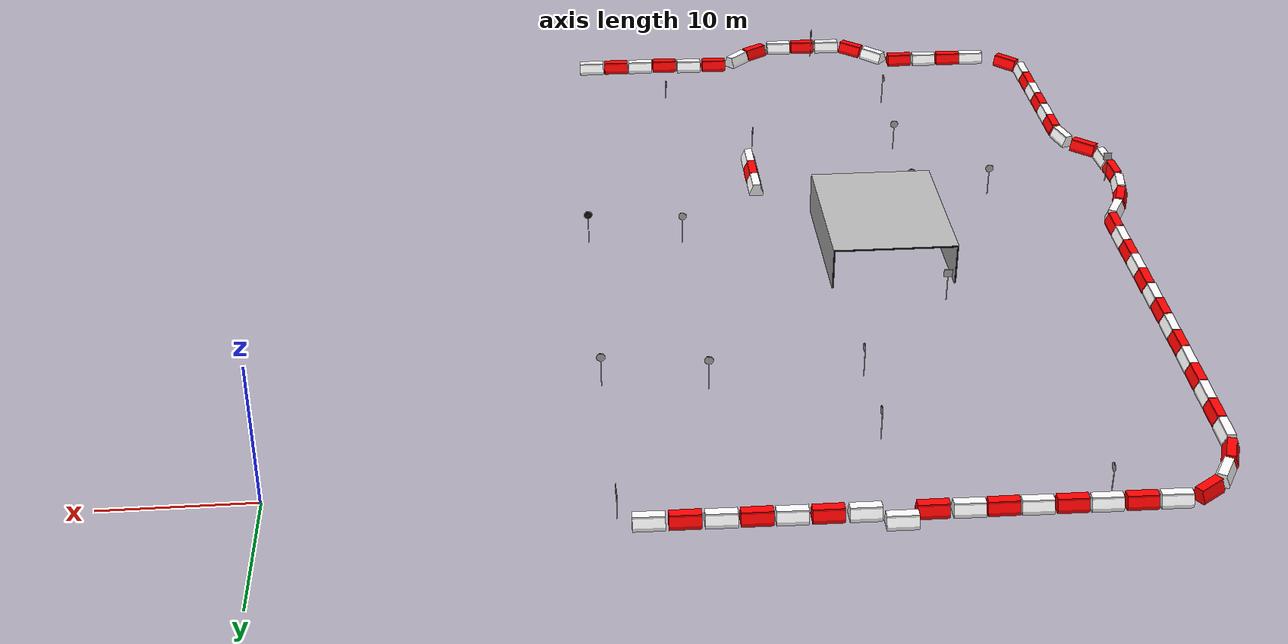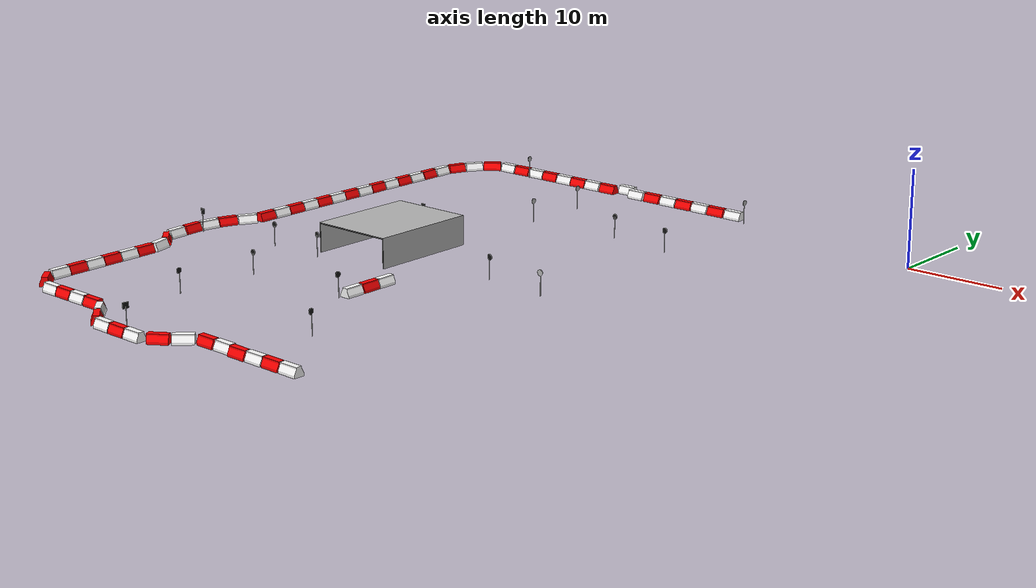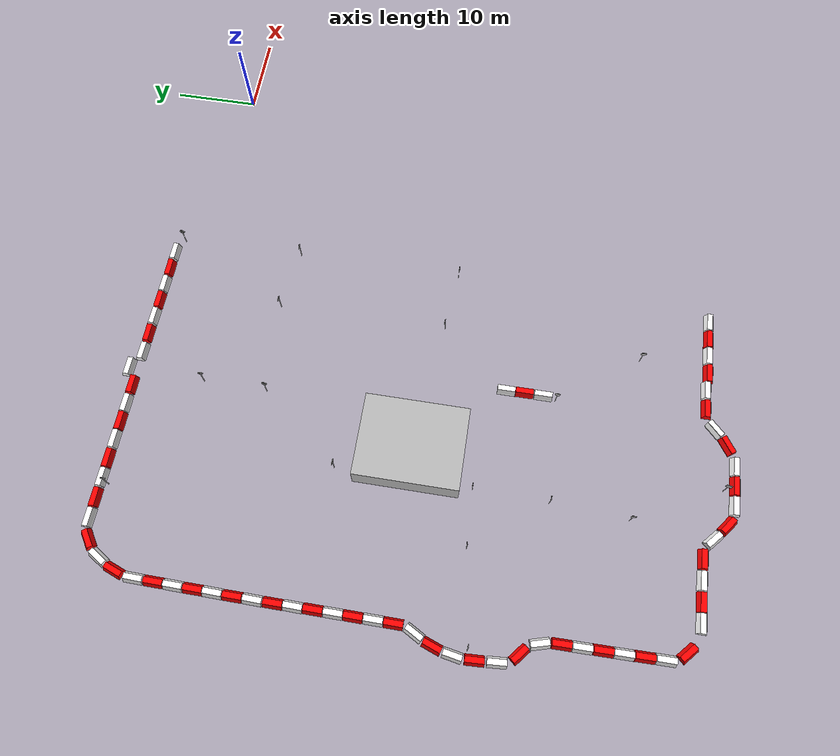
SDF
<sdf version="1.10">
 <world name="default">
  <include>
   <uri>package://simulation_2025/models/durak_levha</uri>
   <name>DurakLevha</name>
   <pose>-62.439900000000002 -36.8536 0 0 0 1.49912</pose>
  </include>
  <include>
   <uri>package://simulation_2025/models/durak_levha</uri>
   <name>DurakLevha_0</name>
   <pose>-42.521700000000003 -61.871200000000002 0 0 0 2.9287899999999998</pose>
  </include>
  <include>
   <uri>package://simulation_2025/models/donel_kavsak_levha</uri>
   <name>DonelKavsak_0</name>
   <pose>-35.172699999999999 -43.2316 0 0 0 3.0950199999999999</pose>
  </include>
  <include>
   <uri>package://simulation_2025/models/donel_kavsak_levha</uri>
   <name>DonelKavsak_1</name>
   <pose>-28.377600000000001 -29.726700000000001 0 0 0 1.4368899999999998</pose>
  </include>
  <include>
   <uri>package://simulation_2025/models/beyaz_bariyer</uri>
   <name>BeyazBariyer_1_1_1_1_1</name>
   <pose>-23.4968 3.5769899999999999 0 0 0 -1.5805400000000001</pose>
  </include>
  <include>
   <uri>package://simulation_2025/models/kirmizi_bariyer</uri>
   <name>KirmiziBariyer_1_1_1_1_1_1</name>
   <pose>-25.707899999999999 3.5786199999999999 0 0 0 -1.5717000000000001</pose>
  </include>
  <include>
   <uri>package://simulation_2025/models/beyaz_bariyer</uri>
   <name>BeyazBariyer_1_1_1_1_1_1</name>
   <pose>-27.892499999999998 3.6085400000000001 0 0 0 -1.5805400000000001</pose>
  </include>
  <include>
   <uri>package://simulation_2025/models/kirmizi_bariyer</uri>
   <name>KirmiziBariyer_1_1_1_1_1_1_1</name>
   <pose>-30.050699999999999 3.6092499999999998 0 0 0 -1.5717000000000001</pose>
  </include>
  <include>
   <uri>package://simulation_2025/models/beyaz_bariyer</uri>
   <name>BeyazBariyer_1_1_1_1_1_1_1</name>
   <pose>-32.192500000000003 3.6444399999999999 0 0 0 -1.5805400000000001</pose>
  </include>
  <include>
   <uri>package://simulation_2025/models/kirmizi_bariyer</uri>
   <name>KirmiziBariyer_1_1_1_1_1_1_1_1</name>
   <pose>-34.387799999999999 3.6457099999999998 0 0 0 -1.5717000000000001</pose>
  </include>
  <include>
   <uri>package://simulation_2025/models/beyaz_bariyer</uri>
   <name>BeyazBariyer_1_1_1_1_1_1_1_1</name>
   <pose>-36.660600000000002 3.6548500000000002 0 0 0 -1.5805400000000001</pose>
  </include>
  <include>
   <uri>package://simulation_2025/models/kirmizi_bariyer</uri>
   <name>KirmiziBariyer_1_1_1_1_1_1_1_1_1</name>
   <pose>-40.786499999999997 3.68798 0 0 0 -1.5717000000000001</pose>
  </include>
  <include>
   <uri>package://simulation_2025/models/beyaz_bariyer</uri>
   <name>BeyazBariyer_1_1_1_1_1_1_1_1_1</name>
   <pose>-43.002699999999997 3.72438 0 0 0 -1.5805400000000001</pose>
  </include>
  <include>
   <uri>package://simulation_2025/models/beyaz_bariyer</uri>
   <name>BeyazBariyer_1_1_1_1_1_1_1_1_2</name>
   <pose>-38.743699999999997 4.6217600000000001 0 0 0 -1.5805400000000001</pose>
  </include>
  <include>
   <uri>package://simulation_2025/models/kirmizi_bariyer</uri>
   <name>KirmiziBariyer_1_1_1_1_1_1_1_1_1_1</name>
   <pose>-45.109400000000001 3.7113200000000002 0 0 0 -1.5717000000000001</pose>
  </include>
  <include>
   <uri>package://simulation_2025/models/beyaz_bariyer</uri>
   <name>BeyazBariyer_1_1_1_1_1_1_1_1_1_1</name>
   <pose>-47.203099999999999 3.7475800000000001 0 0 0 -1.5805400000000001</pose>
  </include>
  <include>
   <uri>package://simulation_2025/models/kirmizi_bariyer</uri>
   <name>KirmiziBariyer_1_1_1_1_1_1_1_1_1_1_1</name>
   <pose>-49.362200000000001 3.74892 0 0 0 -1.5717000000000001</pose>
  </include>
  <include>
   <uri>package://simulation_2025/models/beyaz_bariyer</uri>
   <name>BeyazBariyer_1_1_1_1_1_1_1_1_1_1_1</name>
   <pose>-51.485199999999999 3.77935 0 0 0 -1.5805400000000001</pose>
  </include>
  <include>
   <uri>package://simulation_2025/models/kirmizi_bariyer</uri>
   <name>KirmiziBariyer_1_1_1_1_1_1_1_1_1_1_1_1</name>
   <pose>-53.670900000000003 3.77759 0 0 0 -1.5717000000000001</pose>
  </include>
  <include>
   <uri>package://simulation_2025/models/kirmizi_bariyer</uri>
   <name>KirmiziBariyer_1_1_1_1_1_1_1_1_1_1_1_2</name>
   <pose>-54.361400000000003 -60.233800000000002 0 0 0 -1.5717000000000001</pose>
  </include>
  <include>
   <uri>package://simulation_2025/models/beyaz_bariyer</uri>
   <name>BeyazBariyer_1_1_1_1_1_1_1_1_1_2</name>
   <pose>-52.241500000000002 -60.240499999999997 0 0 0 -1.5805400000000001</pose>
  </include>
  <include>
   <uri>package://simulation_2025/models/kirmizi_bariyer</uri>
   <name>KirmiziBariyer_1_1_1_1_1_1_1_1_1_1_1_2_1</name>
   <pose>-50.063099999999999 -60.280200000000001 0 0 0 -1.5717000000000001</pose>
  </include>
  <include>
   <uri>package://simulation_2025/models/beyaz_bariyer</uri>
   <name>BeyazBariyer_1_1_1_1_1_1_1_1_1_2_1</name>
   <pose>-48.206000000000003 -61.148000000000003 0 0 0 -2.3258899999999998</pose>
  </include>
  <include>
   <uri>package://simulation_2025/models/kirmizi_bariyer</uri>
   <name>KirmiziBariyer_1_1_1_1_1_1_1_1_1_1_1_2_1_1</name>
   <pose>-46.489899999999999 -62.652099999999997 0 0 0 -2.2500100000000001</pose>
  </include>
  <include>
   <uri>package://simulation_2025/models/beyaz_bariyer</uri>
   <name>BeyazBariyer_1_1_1_1_1_1_1_1_1_2_2</name>
   <pose>-44.0349 -63.509 0 0 0 -1.5805400000000001</pose>
  </include>
  <include>
   <uri>package://simulation_2025/models/kirmizi_bariyer</uri>
   <name>KirmiziBariyer_1_1_1_1_1_1_1_1_1_1_1_2_1_2</name>
   <pose>-41.883899999999997 -63.557299999999998 0 0 0 -1.5717000000000001</pose>
  </include>
  <include>
   <uri>package://simulation_2025/models/beyaz_bariyer</uri>
   <name>BeyazBariyer_1_1_1_1_1_1_1_1_1_2_2_1</name>
   <pose>-39.757399999999997 -63.548299999999998 0 0 0 -1.5805400000000001</pose>
  </include>
  <include>
   <uri>package://simulation_2025/models/kirmizi_bariyer</uri>
   <name>KirmiziBariyer_1_1_1_1_1_1_1_1_1_1_1_2_1_1_1</name>
   <pose>-37.686100000000003 -61.932400000000001 0 0 0 2.13992</pose>
  </include>
  <include>
   <uri>package://simulation_2025/models/beyaz_bariyer</uri>
   <name>BeyazBariyer_1_1_1_1_1_1_1_1_1_2_1_1</name>
   <pose>-35.500100000000003 -61.213900000000002 0 0 0 -0.81143300000000007</pose>
  </include>
  <include>
   <uri>package://simulation_2025/models/kirmizi_bariyer</uri>
   <name>KirmiziBariyer_1_1_1_1_1_1_1_1_1_1_1_2_1_2_1</name>
   <pose>-33.616999999999997 -60.371299999999998 0 0 0 -1.5717000000000001</pose>
  </include>
  <include>
   <uri>package://simulation_2025/models/beyaz_bariyer</uri>
   <name>BeyazBariyer_1_1_1_1_1_1_1_1_1_2_2_1_1</name>
   <pose>-31.431899999999999 -60.344000000000001 0 0 0 -1.5805400000000001</pose>
  </include>
  <include>
   <uri>package://simulation_2025/models/kirmizi_bariyer</uri>
   <name>KirmiziBariyer_1_1_1_1_1_1_1_1_1_1_1_2_1_2_1_1</name>
   <pose>-29.322900000000001 -60.545299999999997 0 0 0 -1.5717000000000001</pose>
  </include>
  <include>
   <uri>package://simulation_2025/models/beyaz_bariyer</uri>
   <name>BeyazBariyer_1_1_1_1_1_1_1_1_1_2_2_1_1_1</name>
   <pose>-27.198499999999999 -60.494599999999998 0 0 0 -1.5805400000000001</pose>
  </include>
  <include>
   <uri>package://simulation_2025/models/kirmizi_bariyer</uri>
   <name>KirmiziBariyer_1_1_1_1_1_1_1_1_1_1_1_2_1_2_1_1_1</name>
   <pose>-25.081 -60.515500000000003 0 0 0 -1.5717000000000001</pose>
  </include>
  <include>
   <uri>package://simulation_2025/models/beyaz_bariyer</uri>
   <name>BeyazBariyer_1_1_1_1_1_1_1_1_1_2_2_1_1_1_1</name>
   <pose>-22.959700000000002 -60.500300000000003 0 0 0 -1.5805400000000001</pose>
  </include>
  <include>
   <uri>package://simulation_2025/models/beyaz_bariyer</uri>
   <name>BeyazBariyer_1_1_1_1_1_1_1_1_1_1_1_1</name>
   <pose>-55.817500000000003 3.7802799999999999 0 0 0 -1.5805400000000001</pose>
  </include>
  <include>
   <uri>package://simulation_2025/models/kirmizi_bariyer</uri>
   <name>KirmiziBariyer_1_1_1_1_1_1_1_1_1_1_1_1_1</name>
   <pose>-57.782499999999999 3.1745399999999999 0 0 0 -0.95900699999999994</pose>
  </include>
  <include>
   <uri>package://simulation_2025/models/beyaz_bariyer</uri>
   <name>BeyazBariyer_1_1_1_1_1_1_1_1_1_1_1_1_1</name>
   <pose>-59.241100000000003 1.6916500000000001 0 0 0 -0.53101000000000032</pose>
  </include>
  <include>
   <uri>package://simulation_2025/models/kirmizi_bariyer</uri>
   <name>KirmiziBariyer_1_1_1_1_1_1_1_1_1_1_1_1_1_1</name>
   <pose>-60.209499999999998 -0.20133000000000001 0 0 0 -0.34415499999999971</pose>
  </include>
  <include>
   <uri>package://simulation_2025/models/beyaz_bariyer</uri>
   <name>BeyazBariyer_1_1_1_1_1_1_1_1_1_1_1_1_1_1</name>
   <pose>-60.612699999999997 -2.3035100000000002 0 0 0 -0.019258000000000001</pose>
  </include>
  <include>
   <uri>package://simulation_2025/models/kirmizi_bariyer</uri>
   <name>KirmiziBariyer_1_1_1_1_1_1_1_1_1_1_1_1_1_1_1</name>
   <pose>-60.654800000000002 -4.4290599999999998 0 0 0 -0.0060940000000000022</pose>
  </include>
  <include>
   <uri>package://simulation_2025/models/beyaz_bariyer</uri>
   <name>BeyazBariyer_1_1_1_1_1_1_1_1_1_1_1_1_1_1_1</name>
   <pose>-60.681399999999996 -6.5019999999999998 0 0 0 -0.019258000000000001</pose>
  </include>
  <include>
   <uri>package://simulation_2025/models/kirmizi_bariyer</uri>
   <name>KirmiziBariyer_1_1_1_1_1_1_1_1_1_1_1_1_1_1_1_1</name>
   <pose>-60.712800000000001 -8.5874600000000001 0 0 0 -0.0060940000000000022</pose>
  </include>
  <include>
   <uri>package://simulation_2025/models/beyaz_bariyer</uri>
   <name>BeyazBariyer_1_1_1_1_1_1_1_1_1_1_1_1_1_1_1_1</name>
   <pose>-60.7318 -10.6472 0 0 0 -0.019258000000000001</pose>
  </include>
  <include>
   <uri>package://simulation_2025/models/kirmizi_bariyer</uri>
   <name>KirmiziBariyer_1_1_1_1_1_1_1_1_1_1_1_1_1_1_1_1_1</name>
   <pose>-60.765500000000003 -12.7279 0 0 0 -0.0060940000000000022</pose>
  </include>
  <include>
   <uri>package://simulation_2025/models/beyaz_bariyer</uri>
   <name>BeyazBariyer_1_1_1_1_1_1_1_1_1_1_1_1_1_1_1_1_1</name>
   <pose>-60.7746 -14.817500000000001 0 0 0 -0.019258000000000001</pose>
  </include>
  <include>
   <uri>package://simulation_2025/models/kirmizi_bariyer</uri>
   <name>KirmiziBariyer_1_1_1_1_1_1_1_1_1_1_1_1_1_1_1_1_1_1</name>
   <pose>-60.785699999999999 -16.921900000000001 0 0 0 -0.0060940000000000022</pose>
  </include>
  <include>
   <uri>package://simulation_2025/models/beyaz_bariyer</uri>
   <name>BeyazBariyer_1_1_1_1_1_1_1_1_1_1_1_1_1_1_1_1_1_1</name>
   <pose>-60.7714 -18.988299999999999 0 0 0 -0.019258000000000001</pose>
  </include>
  <include>
   <uri>package://simulation_2025/models/kirmizi_bariyer</uri>
   <name>KirmiziBariyer_1_1_1_1_1_1_1_1_1_1_1_1_1_1_1_1_1_1_1</name>
   <pose>-60.756999999999998 -21.049299999999999 0 0 0 -0.0060940000000000022</pose>
  </include>
  <include>
   <uri>package://simulation_2025/models/beyaz_bariyer</uri>
   <name>BeyazBariyer_1_1_1_1_1_1_1_1_1_1_1_1_1_1_1_1_1_1_1</name>
   <pose>-60.759700000000002 -23.116499999999998 0 0 0 -0.0063040000000000023</pose>
  </include>
  <include>
   <uri>package://simulation_2025/models/kirmizi_bariyer</uri>
   <name>KirmiziBariyer_1_1_1_1_1_1_1_1_1_1_1_1_1_1_1_1_1_1_1_1</name>
   <pose>-60.769100000000002 -25.158100000000001 0 0 0 -0.0060940000000000022</pose>
  </include>
  <include>
   <uri>package://simulation_2025/models/beyaz_bariyer</uri>
   <name>BeyazBariyer_1_1_1_1_1_1_1_1_1_1_1_1_1_1_1_1_1_1_1_1</name>
   <pose>-60.762300000000003 -27.219200000000001 0 0 0 -0.0063040000000000023</pose>
  </include>
  <include>
   <uri>package://simulation_2025/models/kirmizi_bariyer</uri>
   <name>KirmiziBariyer_1_1_1_1_1_1_1_1_1_1_1_1_1_1_1_1_1_1_1_1_1</name>
   <pose>-60.784700000000001 -29.284400000000002 0 0 0 -0.0060940000000000022</pose>
  </include>
  <include>
   <uri>package://simulation_2025/models/beyaz_bariyer</uri>
   <name>BeyazBariyer_1_1_1_1_1_1_1_1_1_1_1_1_1_1_1_1_1_1_1_1_1</name>
   <pose>-61.3977 -31.670100000000001 0 0 0 -0.49684600000000001</pose>
  </include>
  <include>
   <uri>package://simulation_2025/models/kirmizi_bariyer</uri>
   <name>KirmiziBariyer_1_1_1_1_1_1_1_1_1_1_1_1_1_1_1_1_1_1_1_1_1_1</name>
   <pose>-62.2913 -33.552599999999998 0 0 0 -0.33538899999999977</pose>
  </include>
  <include>
   <uri>package://simulation_2025/models/beyaz_bariyer</uri>
   <name>BeyazBariyer_1_1_1_1_1_1_1_1_1_1_1_1_1_1_1_1_1_1_1_1_1_1</name>
   <pose>-62.803899999999999 -35.578600000000002 0 0 0 -0.171542</pose>
  </include>
  <include>
   <uri>package://simulation_2025/models/kirmizi_bariyer</uri>
   <name>KirmiziBariyer_1_1_1_1_1_1_1_1_1_1_1_1_1_1_1_1_1_1_1_1_1_1_1</name>
   <pose>-62.912599999999998 -37.702100000000002 0 0 0 0.050346000000000016</pose>
  </include>
  <include>
   <uri>package://simulation_2025/models/beyaz_bariyer</uri>
   <name>BeyazBariyer_1_1_1_1_1_1_1_1_1_1_1_1_1_1_1_1_1_1_1_1_1_1_1</name>
   <pose>-62.7562 -39.8947 0 0 0 0.06993200000000005</pose>
  </include>
  <include>
   <uri>package://simulation_2025/models/kirmizi_bariyer</uri>
   <name>KirmiziBariyer_1_1_1_1_1_1_1_1_1_1_1_1_1_1_1_1_1_1_1_1_1_1_1_1</name>
   <pose>-61.832700000000003 -41.729999999999997 0 0 0 0.85271200000000014</pose>
  </include>
  <include>
   <uri>package://simulation_2025/models/beyaz_bariyer</uri>
   <name>BeyazBariyer_1_1_1_1_1_1_1_1_1_1_1_1_1_1_1_1_1_1_1_1_1_1_1_1</name>
   <pose>-60.397799999999997 -43.833100000000002 0 0 0 0.27147900000000019</pose>
  </include>
  <include>
   <uri>package://simulation_2025/models/kirmizi_bariyer</uri>
   <name>KirmiziBariyer_1_1_1_1_1_1_1_1_1_1_1_1_1_1_1_1_1_1_1_1_1_1_1_1_1</name>
   <pose>-60.095100000000002 -46.087400000000002 0 0 0 0.011888999999999997</pose>
  </include>
  <include>
   <uri>package://simulation_2025/models/beyaz_bariyer</uri>
   <name>BeyazBariyer_1_1_1_1_1_1_1_1_1_1_1_1_1_1_1_1_1_1_1_1_1_1_1_2</name>
   <pose>-60.075899999999997 -48.1357 0 0 0 0.0096500000000000006</pose>
  </include>
  <include>
   <uri>package://simulation_2025/models/kirmizi_bariyer</uri>
   <name>KirmiziBariyer_1_1_1_1_1_1_1_1_1_1_1_1_1_1_1_1_1_1_1_1_1_1_1_1_1_1</name>
   <pose>-60.0486 -50.2012 0 0 0 0.011888999999999997</pose>
  </include>
  <include>
   <uri>package://simulation_2025/models/beyaz_bariyer</uri>
   <name>BeyazBariyer_1_1_1_1_1_1_1_1_1_1_1_1_1_1_1_1_1_1_1_1_1_1_1_2_1</name>
   <pose>-60.014000000000003 -52.255600000000001 0 0 0 0.0096500000000000006</pose>
  </include>
  <include>
   <uri>package://simulation_2025/models/kirmizi_bariyer</uri>
   <name>KirmiziBariyer_1_1_1_1_1_1_1_1_1_1_1_1_1_1_1_1_1_1_1_1_1_1_1_1_1_1_1</name>
   <pose>-59.981699999999996 -54.306399999999996 0 0 0 0.011888999999999997</pose>
  </include>
  <include>
   <uri>package://simulation_2025/models/beyaz_bariyer</uri>
   <name>BeyazBariyer_1_1_1_1_1_1_1_1_1_1_1_1_1_1_1_1_1_1_1_1_1_1_1_2_1_1</name>
   <pose>-59.936100000000003 -56.356499999999997 0 0 0 0.0096500000000000006</pose>
  </include>
  <include>
   <uri>package://simulation_2025/models/kirmizi_bariyer</uri>
   <name>KirmiziBariyer_1_1_1_1_1_1_1_1_1_1_1_1_1_1_1_1_1_1_1_1_1_1_1_1_1_1_1_1</name>
   <pose>-59.120699999999999 -58.191899999999997 0 0 0 0.80245</pose>
  </include>
  <include>
   <uri>package://simulation_2025/models/beyaz_bariyer</uri>
   <name>BeyazBariyer_1_1_1_1_1_1_1_1_1_2_3</name>
   <pose>-56.4161 -60.232100000000003 0 0 0 -1.5805400000000001</pose>
  </include>
  <model name="ileri_veya_sola_mecburi_levha">
   <link name="link">
    <visual name="visual">
     <geometry>
      <mesh>
       <uri>package://simulation_2025/models/ileri_veya_sola_mecburi_levha/meshes/ileri_veya_sola_mecburi_levha.dae</uri>
      </mesh>
     </geometry>
    </visual>
    <collision name="collision">
     <geometry>
      <mesh>
       <uri>package://simulation_2025/models/ileri_veya_sola_mecburi_levha/meshes/ileri_veya_sola_mecburi_levha.dae</uri>
      </mesh>
     </geometry>
    </collision>
    <inertial>
     <mass>1</mass>
     <inertia><ixx>1</ixx><ixy>0</ixy><ixz>0</ixz><iyy>1</iyy><iyz>0</iyz><izz>1</izz></inertia>
    </inertial>
   </link>
   <pose>-21.579999999999998 3.1400000000000001 0 0 0 0</pose>
   <static>true</static>
  </model>
  <model name="sola_donulmez_levha">
   <link name="link">
    <visual name="visual">
     <geometry>
      <mesh><uri>package://simulation_2025/models/sola_donulmez_levha/meshes/sola_donulmez_levha.dae</uri></mesh>
     </geometry>
    </visual>
    <collision name="collision">
     <geometry>
      <mesh><uri>package://simulation_2025/models/sola_donulmez_levha/meshes/sola_donulmez_levha.dae</uri></mesh>
     </geometry>
    </collision>
    <inertial>
     <mass>1</mass>
     <inertia><ixx>1</ixx><ixy>0</ixy><ixz>0</ixz><iyy>1</iyy><iyz>0</iyz><izz>1</izz></inertia>
    </inertial>
   </link>
   <pose>-38.896795985787435 -3.7710273283417384 0 0 0 0</pose>
   <static>true</static>
  </model>
  <model name="teknofesttunel">
   <link name="link">
    <visual name="visual">
     <geometry>
      <mesh><uri>package://simulation_2025/models/teknofesttunel/meshes/teknofesttunel.dae</uri></mesh>
     </geometry>
    </visual>
    <collision name="collision">
     <geometry>
      <mesh><uri>package://simulation_2025/models/teknofesttunel/meshes/teknofesttunel.dae</uri></mesh>
     </geometry>
    </collision>
    <inertial>
     <mass>1</mass>
     <inertia><ixx>1</ixx><ixy>0</ixy><ixz>0</ixz><iyy>1</iyy><iyz>0</iyz><izz>1</izz></inertia>
    </inertial>
   </link>
   <pose>-43.101554870605469 -28.214649200439457 0 0 0 -1.5716900022979434</pose>
   <static>true</static>
  </model>
  <model name="ileri_veya_saga_mecburi_levha">
   <link name="link">
    <visual name="visual">
     <geometry>
      <mesh>
       <uri>package://simulation_2025/models/ileri_veya_saga_mecburi_levha/meshes/ileri_veya_saga_mecburi_levha.dae</uri>
      </mesh>
     </geometry>
    </visual>
    <collision name="collision">
     <geometry>
      <mesh>
       <uri>package://simulation_2025/models/ileri_veya_saga_mecburi_levha/meshes/ileri_veya_saga_mecburi_levha.dae</uri>
      </mesh>
     </geometry>
    </collision>
    <inertial>
     <mass>1</mass>
     <inertia><ixx>1</ixx><ixy>0</ixy><ixz>0</ixz><iyy>1</iyy><iyz>0</iyz><izz>1</izz></inertia>
    </inertial>
   </link>
   <pose>-28.502700805664062 -10.282600402832031 0 0 0 1.4788469352884439</pose>
   <static>true</static>
  </model>
  <model name="sola_donulmez_levha_0">
   <link name="link">
    <visual name="visual">
     <geometry>
      <mesh><uri>package://simulation_2025/models/sola_donulmez_levha/meshes/sola_donulmez_levha.dae</uri></mesh>
     </geometry>
    </visual>
    <collision name="collision">
     <geometry>
      <mesh><uri>package://simulation_2025/models/sola_donulmez_levha/meshes/sola_donulmez_levha.dae</uri></mesh>
     </geometry>
    </collision>
    <inertial>
     <mass>1</mass>
     <inertia><ixx>1</ixx><ixy>0</ixy><ixz>0</ixz><iyy>1</iyy><iyz>0</iyz><izz>1</izz></inertia>
    </inertial>
   </link>
   <pose>-21.403799057006836 -11.175800323486328 0 0 0 1.5198704143948152</pose>
   <static>true</static>
  </model>
  <model name="ileri_veya_sola_mecburi_levha_0">
   <link name="link">
    <visual name="visual">
     <geometry>
      <mesh>
       <uri>package://simulation_2025/models/ileri_veya_sola_mecburi_levha/meshes/ileri_veya_sola_mecburi_levha.dae</uri>
      </mesh>
     </geometry>
    </visual>
    <collision name="collision">
     <geometry>
      <mesh>
       <uri>package://simulation_2025/models/ileri_veya_sola_mecburi_levha/meshes/ileri_veya_sola_mecburi_levha.dae</uri>
      </mesh>
     </geometry>
    </collision>
    <inertial>
     <mass>1</mass>
     <inertia><ixx>1</ixx><ixy>0</ixy><ixz>0</ixz><iyy>1</iyy><iyz>0</iyz><izz>1</izz></inertia>
    </inertial>
   </link>
   <pose>-38.973646471228527 -11.042765669265485 0 0 0 0</pose>
   <static>true</static>
  </model>
  <model name="sola_donulmez_levha_1">
   <link name="link">
    <visual name="visual">
     <geometry>
      <mesh><uri>package://simulation_2025/models/sola_donulmez_levha/meshes/sola_donulmez_levha.dae</uri></mesh>
     </geometry>
    </visual>
    <collision name="collision">
     <geometry>
      <mesh><uri>package://simulation_2025/models/sola_donulmez_levha/meshes/sola_donulmez_levha.dae</uri></mesh>
     </geometry>
    </collision>
    <inertial>
     <mass>1</mass>
     <inertia><ixx>1</ixx><ixy>0</ixy><ixz>0</ixz><iyy>1</iyy><iyz>0</iyz><izz>1</izz></inertia>
    </inertial>
   </link>
   <pose>-52.740898132324219 -35.489200592041016 0 0 0 1.5594306461265042</pose>
   <static>true</static>
  </model>
  <model name="girisi_olmayan_yol_levha">
   <link name="link">
    <visual name="visual">
     <geometry>
      <mesh>
       <uri>package://simulation_2025/models/girisi_olmayan_yol_levha/meshes/girisi_olmayan_yol_levha.dae</uri>
      </mesh>
     </geometry>
    </visual>
    <collision name="collision">
     <geometry>
      <mesh>
       <uri>package://simulation_2025/models/girisi_olmayan_yol_levha/meshes/girisi_olmayan_yol_levha.dae</uri>
      </mesh>
     </geometry>
    </collision>
    <inertial>
     <mass>1</mass>
     <inertia><ixx>1</ixx><ixy>0</ixy><ixz>0</ixz><iyy>1</iyy><iyz>0</iyz><izz>1</izz></inertia>
    </inertial>
   </link>
   <pose>-46.701698303222649 -43.560798645019531 0 0 0 1.515468798909491</pose>
   <static>true</static>
  </model>
  <model name="sola_donulmez_levha_2">
   <link name="link">
    <visual name="visual">
     <geometry>
      <mesh><uri>package://simulation_2025/models/sola_donulmez_levha/meshes/sola_donulmez_levha.dae</uri></mesh>
     </geometry>
    </visual>
    <collision name="collision">
     <geometry>
      <mesh><uri>package://simulation_2025/models/sola_donulmez_levha/meshes/sola_donulmez_levha.dae</uri></mesh>
     </geometry>
    </collision>
    <inertial>
     <mass>1</mass>
     <inertia><ixx>1</ixx><ixy>0</ixy><ixz>0</ixz><iyy>1</iyy><iyz>0</iyz><izz>1</izz></inertia>
    </inertial>
   </link>
   <pose>-47.273200988769531 -52.137599945068374 0 0 0 -3.0664019672877103</pose>
   <static>true</static>
  </model>
  <model name="sol_mecburi_levha">
   <link name="link">
    <visual name="visual">
     <geometry>
      <mesh><uri>package://simulation_2025/models/sol_mecburi_levha/meshes/sol_mecburi_levha.dae</uri></mesh>
     </geometry>
    </visual>
    <collision name="collision">
     <geometry>
      <mesh><uri>package://simulation_2025/models/sol_mecburi_levha/meshes/sol_mecburi_levha.dae</uri></mesh>
     </geometry>
    </collision>
    <inertial>
     <mass>1</mass>
     <inertia><ixx>1</ixx><ixy>0</ixy><ixz>0</ixz><iyy>1</iyy><iyz>0</iyz><izz>1</izz></inertia>
    </inertial>
   </link>
   <pose>-28.872600555419915 -52.362400054931641 0 0 0 -3.0293583207563457</pose>
   <static>true</static>
  </model>
  <model name="ileri_mecburi_levha">
   <link name="link">
    <visual name="visual">
     <geometry>
      <mesh><uri>package://simulation_2025/models/ileri_mecburi_levha/meshes/ileri_mecburi_levha.dae</uri></mesh>
     </geometry>
    </visual>
    <collision name="collision">
     <geometry>
      <mesh><uri>package://simulation_2025/models/ileri_mecburi_levha/meshes/ileri_mecburi_levha.dae</uri></mesh>
     </geometry>
    </collision>
    <inertial>
     <mass>1</mass>
     <inertia><ixx>1</ixx><ixy>0</ixy><ixz>0</ixz><iyy>1</iyy><iyz>0</iyz><izz>1</izz></inertia>
    </inertial>
   </link>
   <pose>-21.391700744628906 -30.472000122070312 0 0 0 -1.5125830459867819</pose>
   <static>true</static>
  </model>
  <model name="iki_yonlu_levha">
   <link name="link">
    <visual name="visual">
     <geometry>
      <mesh><uri>package://simulation_2025/models/iki_yonlu_levha/meshes/iki_yonlu_levha.dae</uri></mesh>
     </geometry>
    </visual>
    <collision name="collision">
     <geometry>
      <mesh><uri>package://simulation_2025/models/iki_yonlu_levha/meshes/iki_yonlu_levha.dae</uri></mesh>
     </geometry>
    </collision>
    <inertial>
     <mass>1</mass>
     <inertia><ixx>1</ixx><ixy>0</ixy><ixz>0</ixz><iyy>1</iyy><iyz>0</iyz><izz>1</izz></inertia>
    </inertial>
   </link>
   <pose>-46.453506469726555 -20.2211799621582 0 0 0 1.4993500980616292</pose>
   <static>true</static>
  </model>
  <model name="sag_mecburi_levha">
   <link name="link">
    <visual name="visual">
     <geometry>
      <mesh><uri>package://simulation_2025/models/sag_mecburi_levha/meshes/sag_mecburi_levha.dae</uri></mesh>
     </geometry>
    </visual>
    <collision name="collision">
     <geometry>
      <mesh><uri>package://simulation_2025/models/sag_mecburi_levha/meshes/sag_mecburi_levha.dae</uri></mesh>
     </geometry>
    </collision>
    <inertial>
     <mass>1</mass>
     <inertia><ixx>1</ixx><ixy>0</ixy><ixz>0</ixz><iyy>1</iyy><iyz>0</iyz><izz>1</izz></inertia>
    </inertial>
   </link>
   <pose>-46.602100372314453 -35.277999877929688 0 0 0 1.461252498541016</pose>
   <static>true</static>
  </model>
  <model name="ileri_sol_mecburi_levha">
   <link name="link">
    <visual name="visual">
     <geometry>
      <mesh>
       <uri>package://simulation_2025/models/ileri_sol_mecburi_levha/meshes/ileri_sol_mecburi_levha.dae</uri>
      </mesh>
     </geometry>
    </visual>
    <collision name="collision">
     <geometry>
      <mesh>
       <uri>package://simulation_2025/models/ileri_sol_mecburi_levha/meshes/ileri_sol_mecburi_levha.dae</uri>
      </mesh>
     </geometry>
    </collision>
    <inertial>
     <mass>1</mass>
     <inertia><ixx>1</ixx><ixy>0</ixy><ixz>0</ixz><iyy>1</iyy><iyz>0</iyz><izz>1</izz></inertia>
    </inertial>
   </link>
   <pose>-51.971312012503617 3.287707515833405 0 0 0 0</pose>
   <static>true</static>
  </model>
  <model name="white">
   <link name="link">
    <visual name="visual">
     <geometry><mesh><uri>package://simulation_2025/models/beyaz_bariyer/meshes/white.dae</uri></mesh></geometry>
    </visual>
    <collision name="collision">
     <geometry><mesh><uri>package://simulation_2025/models/beyaz_bariyer/meshes/white.dae</uri></mesh></geometry>
    </collision>
    <inertial>
     <mass>1</mass>
     <inertia><ixx>1</ixx><ixy>0</ixy><ixz>0</ixz><iyy>1</iyy><iyz>0</iyz><izz>1</izz></inertia>
    </inertial>
   </link>
   <pose>-34.342899322509766 -37.675613403320312 0 0 0 0</pose>
   <static>true</static>
  </model>
  <model name="red_0">
   <link name="link">
    <visual name="visual">
     <geometry><mesh><uri>package://simulation_2025/models/kirmizi_bariyer/meshes/red.dae</uri></mesh></geometry>
    </visual>
    <collision name="collision">
     <geometry><mesh><uri>package://simulation_2025/models/kirmizi_bariyer/meshes/red.dae</uri></mesh></geometry>
    </collision>
    <inertial>
     <mass>1</mass>
     <inertia><ixx>1</ixx><ixy>0</ixy><ixz>0</ixz><iyy>1</iyy><iyz>0</iyz><izz>1</izz></inertia>
    </inertial>
   </link>
   <pose>-34.327999114990234 -39.733356475830078 0 0 0 0</pose>
   <static>true</static>
  </model>
  <model name="white_0">
   <link name="link">
    <visual name="visual">
     <geometry><mesh><uri>package://simulation_2025/models/beyaz_bariyer/meshes/white.dae</uri></mesh></geometry>
    </visual>
    <collision name="collision">
     <geometry><mesh><uri>package://simulation_2025/models/beyaz_bariyer/meshes/white.dae</uri></mesh></geometry>
    </collision>
    <inertial>
     <mass>1</mass>
     <inertia><ixx>1</ixx><ixy>0</ixy><ixz>0</ixz><iyy>1</iyy><iyz>0</iyz><izz>1</izz></inertia>
    </inertial>
   </link>
   <pose>-34.330398559570312 -41.828422546386719 0 0 0 0</pose>
   <static>true</static>
  </model>
 </world>
</sdf>
